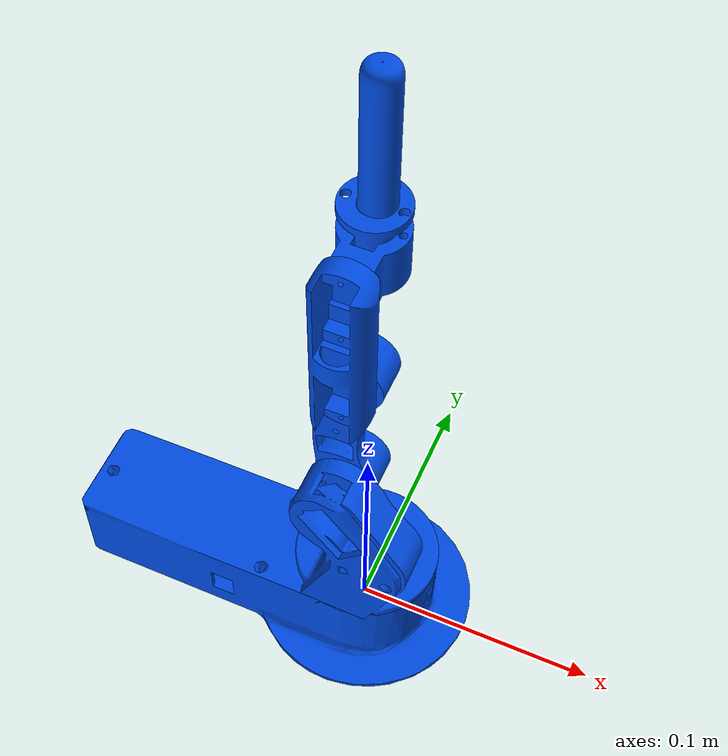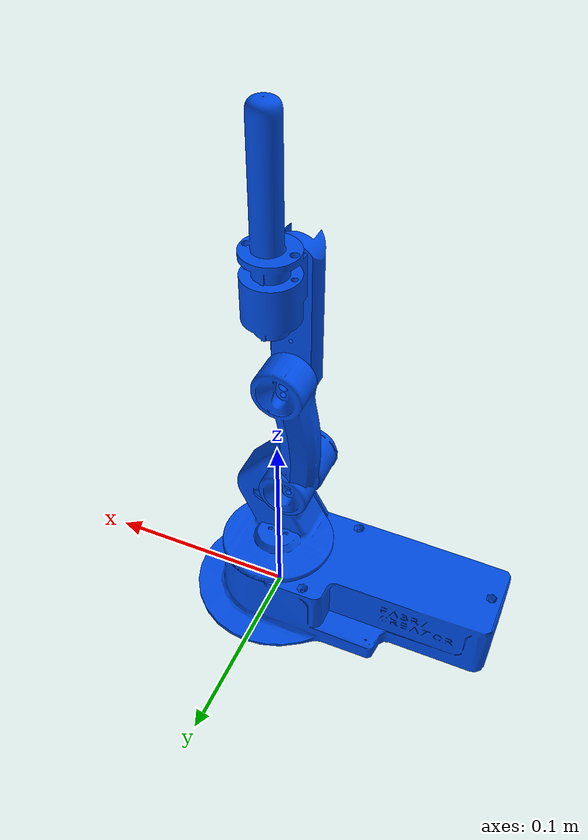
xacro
<?xml version="1.0"?>
<robot xmlns:xacro="http://www.ros.org/wiki/xacro" name="robot_4dof_rl">

	<!-- Fixed joint to anchor base_link to world -->
	<link name="world"/>
	<joint name="world_to_base" type="fixed">
		<parent link="world"/>
		<child link="base_link"/>
		<origin xyz="0 0 0" rpy="0 0 0"/>
	</joint>
	<xacro:include filename="$(find new_robot_arm_urdf)/urdf/materials.xacro"/>
	<xacro:include filename="$(find new_robot_arm_urdf)/urdf/robot_4dof_rl.gazebo"/>
	<xacro:include filename="$(find new_robot_arm_urdf)/urdf/robot_4dof_rl.transmission"/>

	<!-- Anchor base_link in Gazebo -->
	<gazebo reference="base_link">
		<static>true</static>
	</gazebo>

<link name="base_link">
	<inertial>
		<origin xyz="-0.04149471418155845 -0.0025971159520870152 0.013779631134822855" rpy="0 0 0"/>
		<mass value="0.5842942923229515"/>
		<inertia ixx="0.00031" iyy="0.001251" izz="0.001356" ixy="-7.7e-05" iyz="6e-06" ixz="2.3e-05"/>
	</inertial>
	<visual>
		<origin xyz="0 0 0" rpy="0 0 0"/>
		<geometry>
			<mesh filename="package://new_robot_arm_urdf/meshes/base_link__1__1.stl" scale="0.001 0.001 0.001"/>
		</geometry>
			   <material name="blue_robot"/>
	</visual>
	<collision>
		<origin xyz="0 0 0" rpy="0 0 0"/>
		<geometry>
			<mesh filename="package://new_robot_arm_urdf/meshes/base_link__1__1.stl" scale="0.001 0.001 0.001"/>
		</geometry>
	</collision>
</link>

<link name="link_1_1_1">
	<inertial>
		<origin xyz="0.0013921910526341385 -0.009015999327819468 0.0235284962411932" rpy="0 0 0"/>
		<mass value="0.2524132842018846"/>
		<inertia ixx="0.000128" iyy="0.000137" izz="7.6e-05" ixy="2e-06" iyz="1.5e-05" ixz="8e-06"/>
	</inertial>
	<visual>
		<origin xyz="-0.000476 -0.0 -0.033399" rpy="0 0 0"/>
		<geometry>
			<mesh filename="package://new_robot_arm_urdf/meshes/link_1_1_1.stl" scale="0.001 0.001 0.001"/>
		</geometry>
			   <material name="blue_robot"/>
	</visual>
	<collision>
		<origin xyz="-0.000476 -0.0 -0.033399" rpy="0 0 0"/>
		<geometry>
			<mesh filename="package://new_robot_arm_urdf/meshes/link_1_1_1.stl" scale="0.001 0.001 0.001"/>
		</geometry>
	</collision>
</link>

<link name="link_2_1_1">
	<inertial>
		<origin xyz="0.00014024094001882127 0.007326916010056965 0.030962792328760272" rpy="0 0 0"/>
		<mass value="0.13407278823863725"/>
		<inertia ixx="0.000109" iyy="0.000112" izz="1e-05" ixy="-0.0" iyz="1e-06" ixz="-4e-06"/>
	</inertial>
	<visual>
		<origin xyz="0.009476 0.001031 -0.085858" rpy="0 0 0"/>
		<geometry>
			<mesh filename="package://new_robot_arm_urdf/meshes/link_2_1_1.stl" scale="0.001 0.001 0.001"/>
		</geometry>
			   <material name="blue_robot"/>
	</visual>
	<collision>
		<origin xyz="0.009476 0.001031 -0.085858" rpy="0 0 0"/>
		<geometry>
			<mesh filename="package://new_robot_arm_urdf/meshes/link_2_1_1.stl" scale="0.001 0.001 0.001"/>
		</geometry>
	</collision>
</link>

<link name="link_3_1_1">
	<inertial>
		<origin xyz="2.7826710637217367e-06 -0.006259371756109719 0.026211019639232058" rpy="0 0 0"/>
		<mass value="0.10702282683217142"/>
		<inertia ixx="4.7e-05" iyy="5.1e-05" izz="8e-06" ixy="0.0" iyz="0.0" ixz="0.0"/>
	</inertial>
	<visual>
		<origin xyz="0.006834 0.001231 -0.148989" rpy="0 0 0"/>
		<geometry>
			<mesh filename="package://new_robot_arm_urdf/meshes/link_3_1_1.stl" scale="0.001 0.001 0.001"/>
		</geometry>
			   <material name="blue_robot"/>
	</visual>
	<collision>
		<origin xyz="0.006834 0.001231 -0.148989" rpy="0 0 0"/>
		<geometry>
			<mesh filename="package://new_robot_arm_urdf/meshes/link_3_1_1.stl" scale="0.001 0.001 0.001"/>
		</geometry>
	</collision>
</link>

<link name="link_4_1_1">
	<inertial>
		<origin xyz="0.0005485300954317131 0.017661175140943945 0.019252856661590934" rpy="0 0 0"/>
		<mass value="0.16465523280917432"/>
		<inertia ixx="0.000111" iyy="0.000109" izz="1.1e-05" ixy="-0.0" iyz="-3e-06" ixz="-2e-06"/>
	</inertial>
	<visual>
		<origin xyz="0.006957 0.001301 -0.201505" rpy="0 0 0"/>
		<geometry>
			<mesh filename="package://new_robot_arm_urdf/meshes/link_4_1_1.stl" scale="0.001 0.001 0.001"/>
		</geometry>
			   <material name="blue_robot"/>
	</visual>
	<collision>
		<origin xyz="0.006957 0.001301 -0.201505" rpy="0 0 0"/>
		<geometry>
			<mesh filename="package://new_robot_arm_urdf/meshes/link_4_1_1.stl" scale="0.001 0.001 0.001"/>
		</geometry>
	</collision>
</link>

<joint name="Joint1" type="revolute">
	<origin xyz="0.000476 0.0 0.033399" rpy="0 0 0"/>
	<parent link="base_link"/>
	<child link="link_1_1_1"/>
	<axis xyz="0.0 0.0 1.0"/>
	<limit effort="411" lower="-1.57079" upper="1.57079" velocity="6.2832"/>
	<dynamics damping="10.0" friction="1.0"/>
</joint>

<joint name="Joint2" type="revolute">
	<origin xyz="-0.009952 -0.001031 0.052459" rpy="0 0 0"/>
	<parent link="link_1_1_1"/>
	<child link="link_2_1_1"/>
	<axis xyz="0.0 1.0 0.0"/>
	<limit effort="411" lower="-1.57079" upper="1.57079" velocity="6.2832"/>
	<dynamics damping="8.0" friction="0.8"/>
</joint>

<joint name="Joint3" type="revolute">
	<origin xyz="0.002642 -0.0002 0.063131" rpy="0 0 0"/>
	<parent link="link_2_1_1"/>
	<child link="link_3_1_1"/>
	<axis xyz="0.0 1.0 0.0"/>
	<limit effort="194" lower="-1.57079" upper="1.57079" velocity="6.2832"/>
	<dynamics damping="6.0" friction="0.6"/>
</joint>

<joint name="Joint4" type="revolute">
	<origin xyz="-0.000123 -7e-05 0.052516" rpy="0 0 0"/>
	<parent link="link_3_1_1"/>
	<child link="link_4_1_1"/>
	<axis xyz="0.0 1.0 0.0"/>
	<limit effort="194" lower="0.0" upper="3.14159" velocity="6.2832"/>
	<dynamics damping="20.0" friction="4.0"/>
</joint>

<link name="endefff_1">
	<inertial>
		<origin xyz="-2.418967452446838e-07 -3.0465800779019836e-07 5.0444597155419046e-05" rpy="0 0 0"/>
		<mass value="1.5413438956677347e-07"/>
		<inertia ixx="0.0" iyy="0.0" izz="0.0" ixy="0.0" iyz="0.0" ixz="-0.0"/>
	</inertial>
	<visual>
		<origin xyz="0.00582 -0.017449 -0.279451" rpy="0 0 0"/>
		<geometry>
			<mesh filename="package://new_robot_arm_urdf/meshes/endefff_1.stl" scale="0.001 0.001 0.001"/>
		</geometry>
			   <material name="blue_robot"/>
	</visual>
	<collision>
		<origin xyz="0.00582 -0.017449 -0.279451" rpy="0 0 0"/>
		<geometry>
			<mesh filename="package://new_robot_arm_urdf/meshes/endefff_1.stl" scale="0.001 0.001 0.001"/>
		</geometry>
	</collision>
</link>

<joint name="Rigid5" type="fixed">
	<origin xyz="0.001137 0.01875 0.077946" rpy="0 0 0"/>
	<parent link="link_4_1_1"/>
	<child link="endefff_1"/>
</joint>

<xacro:robot_4dof_transmission/>
<xacro:robot_4dof_gazebo/>
</robot>

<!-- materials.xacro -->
<robot xmlns:xacro="http://www.ros.org/wiki/xacro">
	<!-- Default material definitions -->
	<material name="blue_robot">
		<color rgba="0.0 0.3 0.9 1.0"/>
	</material>
		<material name="silver">
			<color rgba="0.75 0.75 0.75 1.0"/>
		</material>
		<material name="green_ee">
			<color rgba="0.0 0.5 0.0 1.0"/>
		</material>
</robot>
